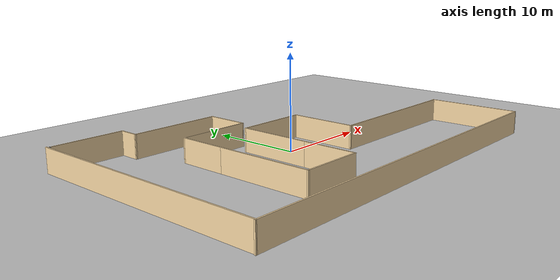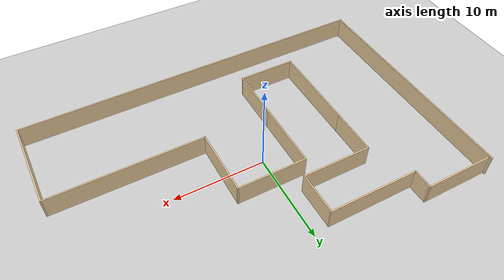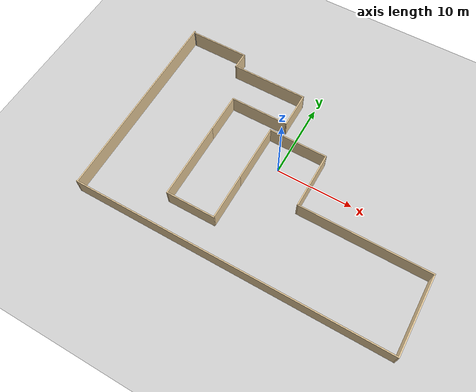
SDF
<sdf version="1.6">
 <world name="default">
  <light name="sun" type="directional">
   <pose>0 0 10 0 -0 0</pose>
   <diffuse>0.8 0.8 0.8 1</diffuse>
   <specular>0.2 0.2 0.2 1</specular>
   <attenuation>
    <range>1000</range>
    <constant>0.9</constant>
    <linear>0.01</linear>
    <quadratic>0.001</quadratic>
   </attenuation>
   <direction>-0.5 0.1 -0.9</direction>
  </light>
  <model name="ground_plane">
   <static>1</static>
   <link name="link">
    <collision name="collision">
     <geometry><plane><normal>0 0 1</normal><size>100 100</size></plane></geometry>
     <surface><friction><ode><mu>100</mu><mu2>50</mu2></ode></friction></surface>
    </collision>
    <visual name="visual">
     <cast_shadows>0</cast_shadows>
     <geometry><plane><normal>0 0 1</normal><size>100 100</size></plane></geometry>
     <material>
      <script><uri>file://media/materials/scripts/gazebo.material</uri><name>Gazebo/Grey</name></script>
     </material>
    </visual>
   </link>
  </model>
  <gravity>0 0 -9.8</gravity>
  <magnetic_field>6e-06 2.3e-05 -4.2e-05</magnetic_field>
  <atmosphere type="adiabatic"/>
  <physics name="default_physics" default="0" type="ode">
   <max_step_size>0.001</max_step_size>
   <real_time_factor>1</real_time_factor>
   <real_time_update_rate>1000</real_time_update_rate>
  </physics>
  <scene><ambient>0.4 0.4 0.4 1</ambient><background>0.7 0.7 0.7 1</background><shadows>1</shadows></scene>
  <spherical_coordinates>
   <surface_model>EARTH_WGS84</surface_model>
   <latitude_deg>0</latitude_deg>
   <longitude_deg>0</longitude_deg>
   <elevation>0</elevation>
   <heading_deg>0</heading_deg>
  </spherical_coordinates>
  <model name="my_practice_room">
   <pose>1.08784 -1.06405 0 0 -0 0</pose>
   <link name="Wall_10">
    <collision name="Wall_10_Collision">
     <geometry><box><size>7.75 0.15 2.5</size></box></geometry>
     <pose>0 0 1.25 0 -0 0</pose>
    </collision>
    <visual name="Wall_10_Visual">
     <pose>0 0 1.25 0 -0 0</pose>
     <geometry><box><size>7.75 0.15 2.5</size></box></geometry>
     <material>
      <script><uri>file://media/materials/scripts/gazebo.material</uri><name>Gazebo/Grey</name></script>
      <ambient>0.921569 0.807843 0.615686 1</ambient>
     </material>
     <meta><layer>0</layer></meta>
    </visual>
    <pose>-0.265412 4.40045 0 0 -0 3.14159</pose>
   </link>
   <link name="Wall_11">
    <collision name="Wall_11_Collision">
     <geometry><box><size>7.75 0.15 2.5</size></box></geometry>
     <pose>0 0 1.25 0 -0 0</pose>
    </collision>
    <visual name="Wall_11_Visual">
     <pose>0 0 1.25 0 -0 0</pose>
     <geometry><box><size>7.75 0.15 2.5</size></box></geometry>
     <material>
      <script><uri>file://media/materials/scripts/gazebo.material</uri><name>Gazebo/Grey</name></script>
      <ambient>0.921569 0.807843 0.615686 1</ambient>
     </material>
     <meta><layer>0</layer></meta>
    </visual>
    <pose>-4.06541 0.600454 0 0 0 -1.5708</pose>
   </link>
   <link name="Wall_12">
    <collision name="Wall_12_Collision">
     <geometry><box><size>6 0.15 2.5</size></box></geometry>
     <pose>0 0 1.25 0 -0 0</pose>
    </collision>
    <visual name="Wall_12_Visual">
     <pose>0 0 1.25 0 -0 0</pose>
     <geometry><box><size>6 0.15 2.5</size></box></geometry>
     <material>
      <script><uri>file://media/materials/scripts/gazebo.material</uri><name>Gazebo/Grey</name></script>
      <ambient>0.921569 0.807843 0.615686 1</ambient>
     </material>
     <meta><layer>0</layer></meta>
    </visual>
    <pose>-4.06541 -6.12455 0 0 0 -1.5708</pose>
   </link>
   <link name="Wall_13">
    <collision name="Wall_13_Collision">
     <geometry><box><size>6.5 0.15 2.5</size></box></geometry>
     <pose>0 0 1.25 0 -0 0</pose>
    </collision>
    <visual name="Wall_13_Visual">
     <pose>0 0 1.25 0 -0 0</pose>
     <geometry><box><size>6.5 0.15 2.5</size></box></geometry>
     <material>
      <script><uri>file://media/materials/scripts/gazebo.material</uri><name>Gazebo/Grey</name></script>
      <ambient>0.921569 0.807843 0.615686 1</ambient>
     </material>
     <meta><layer>0</layer></meta>
    </visual>
    <pose>-7.24041 -9.04955 0 0 -0 3.14159</pose>
   </link>
   <link name="Wall_14">
    <collision name="Wall_14_Collision">
     <geometry><box><size>10.25 0.15 2.5</size></box></geometry>
     <pose>0 0 1.25 0 -0 0</pose>
    </collision>
    <visual name="Wall_14_Visual">
     <pose>0 0 1.25 0 -0 0</pose>
     <geometry><box><size>10.25 0.15 2.5</size></box></geometry>
     <material>
      <script><uri>file://media/materials/scripts/gazebo.material</uri><name>Gazebo/Grey</name></script>
      <ambient>0.921569 0.807843 0.615686 1</ambient>
     </material>
     <meta><layer>0</layer></meta>
    </visual>
    <pose>-10.4154 -3.99955 0 0 -0 1.5708</pose>
   </link>
   <link name="Wall_15">
    <collision name="Wall_15_Collision">
     <geometry><box><size>5.25 0.15 2.5</size></box></geometry>
     <pose>0 0 1.25 0 -0 0</pose>
    </collision>
    <visual name="Wall_15_Visual">
     <pose>0 0 1.25 0 -0 0</pose>
     <geometry><box><size>5.25 0.15 2.5</size></box></geometry>
     <material>
      <script><uri>file://media/materials/scripts/gazebo.material</uri><name>Gazebo/Grey</name></script>
      <ambient>0.921569 0.807843 0.615686 1</ambient>
     </material>
     <meta><layer>0</layer></meta>
    </visual>
    <pose>-10.4154 3.60045 0 0 -0 1.5708</pose>
   </link>
   <link name="Wall_16">
    <collision name="Wall_16_Collision">
     <geometry><box><size>7.75 0.15 2.5</size></box></geometry>
     <pose>0 0 1.25 0 -0 0</pose>
    </collision>
    <visual name="Wall_16_Visual">
     <pose>0 0 1.25 0 -0 0</pose>
     <geometry><box><size>7.75 0.15 2.5</size></box></geometry>
     <material>
      <script><uri>file://media/materials/scripts/gazebo.material</uri><name>Gazebo/Grey</name></script>
      <ambient>0.921569 0.807843 0.615686 1</ambient>
     </material>
     <meta><layer>0</layer></meta>
    </visual>
    <pose>-6.61541 6.15045 0 0 -0 0</pose>
   </link>
   <link name="Wall_17">
    <collision name="Wall_17_Collision">
     <geometry><box><size>4.75 0.15 2.5</size></box></geometry>
     <pose>0 0 1.25 0 -0 0</pose>
    </collision>
    <visual name="Wall_17_Visual">
     <pose>0 0 1.25 0 -0 0</pose>
     <geometry><box><size>4.75 0.15 2.5</size></box></geometry>
     <material>
      <script><uri>file://media/materials/scripts/gazebo.material</uri><name>Gazebo/Grey</name></script>
      <ambient>0.921569 0.807843 0.615686 1</ambient>
     </material>
     <meta><layer>0</layer></meta>
    </visual>
    <pose>-2.81541 8.45045 0 0 -0 1.5708</pose>
   </link>
   <link name="Wall_18">
    <collision name="Wall_18_Collision">
     <geometry><box><size>10 0.15 2.5</size></box></geometry>
     <pose>0 0 1.25 0 -0 0</pose>
    </collision>
    <visual name="Wall_18_Visual">
     <pose>0 0 1.25 0 -0 0</pose>
     <geometry><box><size>10 0.15 2.5</size></box></geometry>
     <material>
      <script><uri>file://media/materials/scripts/gazebo.material</uri><name>Gazebo/Grey</name></script>
      <ambient>0.921569 0.807843 0.615686 1</ambient>
     </material>
     <meta><layer>0</layer></meta>
    </visual>
    <pose>-7.74041 10.7505 0 0 -0 3.14159</pose>
   </link>
   <link name="Wall_19">
    <collision name="Wall_19_Collision">
     <geometry><box><size>2.25 0.15 2.5</size></box></geometry>
     <pose>0 0 1.25 0 -0 0</pose>
    </collision>
    <visual name="Wall_19_Visual">
     <pose>0 0 1.25 0 -0 0</pose>
     <geometry><box><size>2.25 0.15 2.5</size></box></geometry>
     <material>
      <script><uri>file://media/materials/scripts/gazebo.material</uri><name>Gazebo/Grey</name></script>
      <ambient>0.921569 0.807843 0.615686 1</ambient>
     </material>
     <meta><layer>0</layer></meta>
    </visual>
    <pose>-12.6654 11.8005 0 0 -0 1.5708</pose>
   </link>
   <link name="Wall_20">
    <collision name="Wall_20_Collision">
     <geometry><box><size>7.75 0.15 2.5</size></box></geometry>
     <pose>0 0 1.25 0 -0 0</pose>
    </collision>
    <visual name="Wall_20_Visual">
     <pose>0 0 1.25 0 -0 0</pose>
     <geometry><box><size>7.75 0.15 2.5</size></box></geometry>
     <material>
      <script><uri>file://media/materials/scripts/gazebo.material</uri><name>Gazebo/Grey</name></script>
      <ambient>0.921569 0.807843 0.615686 1</ambient>
     </material>
     <meta><layer>0</layer></meta>
    </visual>
    <pose>-16.4654 12.8505 0 0 -0 3.14159</pose>
   </link>
   <link name="Wall_21">
    <collision name="Wall_21_Collision">
     <geometry><box><size>0.15 0.15 2.5</size></box></geometry>
     <pose>0 0 1.25 0 -0 0</pose>
    </collision>
    <visual name="Wall_21_Visual">
     <pose>0 0 1.25 0 -0 0</pose>
     <geometry><box><size>0.15 0.15 2.5</size></box></geometry>
     <material>
      <script><uri>file://media/materials/scripts/gazebo.material</uri><name>Gazebo/Grey</name></script>
      <ambient>1 1 1 1</ambient>
     </material>
     <meta><layer>0</layer></meta>
    </visual>
    <pose>-20.2654 12.8505 0 0 -0 0</pose>
   </link>
   <link name="Wall_5">
    <collision name="Wall_5_Collision">
     <geometry><box><size>26.25 0.15 2.5</size></box></geometry>
     <pose>0 0 1.25 0 -0 0</pose>
    </collision>
    <visual name="Wall_5_Visual">
     <pose>0 0 1.25 0 -0 0</pose>
     <geometry><box><size>26.25 0.15 2.5</size></box></geometry>
     <material>
      <script><uri>file://media/materials/scripts/gazebo.material</uri><name>Gazebo/Grey</name></script>
      <ambient>0.921569 0.807843 0.615686 1</ambient>
     </material>
     <meta><layer>0</layer></meta>
    </visual>
    <pose>-20.4252 0.000454 0 0 0 -1.56771</pose>
   </link>
   <link name="Wall_6">
    <collision name="Wall_6_Collision">
     <geometry><box><size>41 0.15 2.5</size></box></geometry>
     <pose>0 0 1.25 0 -0 0</pose>
    </collision>
    <visual name="Wall_6_Visual">
     <pose>0 0 1.25 0 -0 0</pose>
     <geometry><box><size>41 0.15 2.5</size></box></geometry>
     <material>
      <script><uri>file://media/materials/scripts/gazebo.material</uri><name>Gazebo/Grey</name></script>
      <ambient>0.921569 0.807843 0.615686 1</ambient>
     </material>
     <meta><layer>0</layer></meta>
    </visual>
    <pose>-0.040411 -13.0495 0 0 -0 0</pose>
   </link>
   <link name="Wall_7">
    <collision name="Wall_7_Collision">
     <geometry><box><size>10.2513 0.15 2.5</size></box></geometry>
     <pose>0 0 1.25 0 -0 0</pose>
    </collision>
    <visual name="Wall_7_Visual">
     <pose>0 0 1.25 0 -0 0</pose>
     <geometry><box><size>10.2513 0.15 2.5</size></box></geometry>
     <material>
      <script><uri>file://media/materials/scripts/gazebo.material</uri><name>Gazebo/Grey</name></script>
      <ambient>0.921569 0.807843 0.615686 1</ambient>
     </material>
     <meta><layer>0</layer></meta>
    </visual>
    <pose>20.4248 -7.99955 0 0 -0 1.57876</pose>
   </link>
   <link name="Wall_8">
    <collision name="Wall_8_Collision">
     <geometry><box><size>17 0.15 2.5</size></box></geometry>
     <pose>0 0 1.25 0 -0 0</pose>
    </collision>
    <visual name="Wall_8_Visual">
     <pose>0 0 1.25 0 -0 0</pose>
     <geometry><box><size>17 0.15 2.5</size></box></geometry>
     <material>
      <script><uri>file://media/materials/scripts/gazebo.material</uri><name>Gazebo/Grey</name></script>
      <ambient>0.921569 0.807843 0.615686 1</ambient>
     </material>
     <meta><layer>0</layer></meta>
    </visual>
    <pose>11.9596 -2.94955 0 0 -0 3.14159</pose>
   </link>
   <link name="Wall_9">
    <collision name="Wall_9_Collision">
     <geometry><box><size>7.5 0.15 2.5</size></box></geometry>
     <pose>0 0 1.25 0 -0 0</pose>
    </collision>
    <visual name="Wall_9_Visual">
     <pose>0 0 1.25 0 -0 0</pose>
     <geometry><box><size>7.5 0.15 2.5</size></box></geometry>
     <material>
      <script><uri>file://media/materials/scripts/gazebo.material</uri><name>Gazebo/Grey</name></script>
      <ambient>0.921569 0.807843 0.615686 1</ambient>
     </material>
     <meta><layer>0</layer></meta>
    </visual>
    <pose>3.53459 0.725454 0 0 -0 1.5708</pose>
   </link>
   <static>1</static>
  </model>
 </world>
</sdf>
